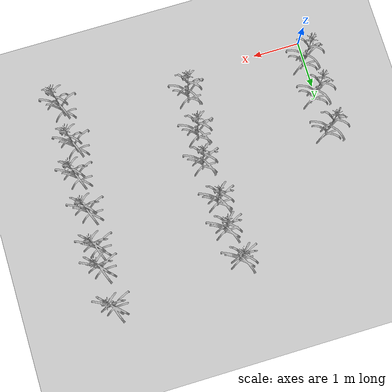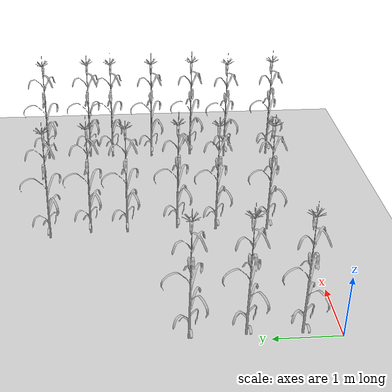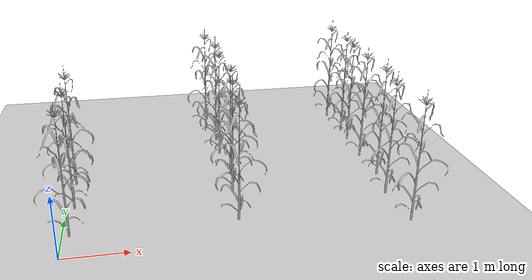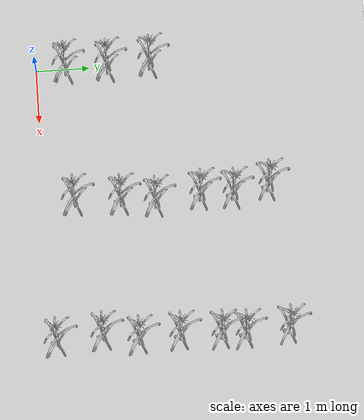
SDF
<sdf version="1.6">
 <world name="default">
  <model name="ground_plane">
   <static>1</static>
   <link name="link">
    <collision name="collision">
     <geometry><plane><normal>0 0 1</normal><size>100 100</size></plane></geometry>
     <surface>
      <contact><collide_bitmask>65535</collide_bitmask></contact>
      <friction><ode><mu>100</mu><mu2>50</mu2></ode></friction>
     </surface>
    </collision>
    <visual name="visual">
     <cast_shadows>0</cast_shadows>
     <geometry><plane><normal>0 0 1</normal><size>100 100</size></plane></geometry>
     <material>
      <script><uri>file://media/materials/scripts/gazebo.material</uri><name>Gazebo/Grey</name></script>
     </material>
    </visual>
   </link>
  </model>
  <model name="corn_stalk2_clone_4">
   <static>1</static>
   <link name="corn_stalk2_link">
    <collision name="collision">
     <geometry><mesh><scale>1 1 1</scale><uri>model://corn_type2/meshes/model.stl</uri></mesh></geometry>
    </collision>
    <visual name="corn_stalk2_visual">
     <geometry><mesh><uri>model://corn_type2/meshes/model.stl</uri><scale>1 1 1</scale></mesh></geometry>
     <material>
      <script>
       <uri>model://corn_type2/materials/scripts</uri>
       <uri>model://corn_type2/materials/textures</uri>
       <name>corn_type2/Diffuse</name>
      </script>
     </material>
    </visual>
   </link>
   <pose>0.104419 0.548248 0 0 -0 0</pose>
  </model>
  <model name="corn_stalk2_clone_5">
   <static>1</static>
   <link name="corn_stalk2_link">
    <collision name="collision">
     <geometry><mesh><scale>1 1 1</scale><uri>model://corn_type2/meshes/model.stl</uri></mesh></geometry>
    </collision>
    <visual name="corn_stalk2_visual">
     <geometry><mesh><uri>model://corn_type2/meshes/model.stl</uri><scale>1 1 1</scale></mesh></geometry>
     <material>
      <script>
       <uri>model://corn_type2/materials/scripts</uri>
       <uri>model://corn_type2/materials/textures</uri>
       <name>corn_type2/Diffuse</name>
      </script>
     </material>
    </visual>
   </link>
   <pose>0.125821 1.32814 0 0 -0 0</pose>
  </model>
  <model name="corn_stalk2_clone_6">
   <static>1</static>
   <link name="corn_stalk2_link">
    <collision name="collision">
     <geometry><mesh><scale>1 1 1</scale><uri>model://corn_type2/meshes/model.stl</uri></mesh></geometry>
    </collision>
    <visual name="corn_stalk2_visual">
     <geometry><mesh><uri>model://corn_type2/meshes/model.stl</uri><scale>1 1 1</scale></mesh></geometry>
     <material>
      <script>
       <uri>model://corn_type2/materials/scripts</uri>
       <uri>model://corn_type2/materials/textures</uri>
       <name>corn_type2/Diffuse</name>
      </script>
     </material>
    </visual>
   </link>
   <pose>0.098846 2.1209 0 0 -0 0</pose>
  </model>
  <model name="corn_stalk2_clone_15">
   <static>1</static>
   <link name="corn_stalk2_link">
    <collision name="collision">
     <geometry><mesh><scale>1 1 1</scale><uri>model://corn_type2/meshes/model.stl</uri></mesh></geometry>
    </collision>
    <visual name="corn_stalk2_visual">
     <geometry><mesh><uri>model://corn_type2/meshes/model.stl</uri><scale>1 1 1</scale></mesh></geometry>
     <material>
      <script>
       <uri>model://corn_type2/materials/scripts</uri>
       <uri>model://corn_type2/materials/textures</uri>
       <name>corn_type2/Diffuse</name>
      </script>
     </material>
    </visual>
   </link>
   <pose>2.64897 0.56757 0 0 -0 0</pose>
  </model>
  <model name="corn_stalk2_clone_16">
   <static>1</static>
   <link name="corn_stalk2_link">
    <collision name="collision">
     <geometry><mesh><scale>1 1 1</scale><uri>model://corn_type2/meshes/model.stl</uri></mesh></geometry>
    </collision>
    <visual name="corn_stalk2_visual">
     <geometry><mesh><uri>model://corn_type2/meshes/model.stl</uri><scale>1 1 1</scale></mesh></geometry>
     <material>
      <script>
       <uri>model://corn_type2/materials/scripts</uri>
       <uri>model://corn_type2/materials/textures</uri>
       <name>corn_type2/Diffuse</name>
      </script>
     </material>
    </visual>
   </link>
   <pose>2.69733 1.42162 0 0 -0 0</pose>
  </model>
  <model name="corn_stalk2_clone_17">
   <static>1</static>
   <link name="corn_stalk2_link">
    <collision name="collision">
     <geometry><mesh><scale>1 1 1</scale><uri>model://corn_type2/meshes/model.stl</uri></mesh></geometry>
    </collision>
    <visual name="corn_stalk2_visual">
     <geometry><mesh><uri>model://corn_type2/meshes/model.stl</uri><scale>1 1 1</scale></mesh></geometry>
     <material>
      <script>
       <uri>model://corn_type2/materials/scripts</uri>
       <uri>model://corn_type2/materials/textures</uri>
       <name>corn_type2/Diffuse</name>
      </script>
     </material>
    </visual>
   </link>
   <pose>2.77481 2.05723 0 0 -0 0</pose>
  </model>
  <model name="corn_stalk2_clone_18">
   <static>1</static>
   <link name="corn_stalk2_link">
    <collision name="collision">
     <geometry><mesh><scale>1 1 1</scale><uri>model://corn_type2/meshes/model.stl</uri></mesh></geometry>
    </collision>
    <visual name="corn_stalk2_visual">
     <geometry><mesh><uri>model://corn_type2/meshes/model.stl</uri><scale>1 1 1</scale></mesh></geometry>
     <material>
      <script>
       <uri>model://corn_type2/materials/scripts</uri>
       <uri>model://corn_type2/materials/textures</uri>
       <name>corn_type2/Diffuse</name>
      </script>
     </material>
    </visual>
   </link>
   <pose>2.6994 2.88951 0 0 -0 0</pose>
  </model>
  <model name="corn_stalk2_clone_19">
   <static>1</static>
   <link name="corn_stalk2_link">
    <collision name="collision">
     <geometry><mesh><scale>1 1 1</scale><uri>model://corn_type2/meshes/model.stl</uri></mesh></geometry>
    </collision>
    <visual name="corn_stalk2_visual">
     <geometry><mesh><uri>model://corn_type2/meshes/model.stl</uri><scale>1 1 1</scale></mesh></geometry>
     <material>
      <script>
       <uri>model://corn_type2/materials/scripts</uri>
       <uri>model://corn_type2/materials/textures</uri>
       <name>corn_type2/Diffuse</name>
      </script>
     </material>
    </visual>
   </link>
   <pose>2.72044 3.49084 0 0 -0 0</pose>
  </model>
  <model name="corn_stalk2_clone_27">
   <static>1</static>
   <link name="corn_stalk2_link">
    <collision name="collision">
     <geometry><mesh><scale>1 1 1</scale><uri>model://corn_type2/meshes/model.stl</uri></mesh></geometry>
    </collision>
    <visual name="corn_stalk2_visual">
     <geometry><mesh><uri>model://corn_type2/meshes/model.stl</uri><scale>1 1 1</scale></mesh></geometry>
     <material>
      <script>
       <uri>model://corn_type2/materials/scripts</uri>
       <uri>model://corn_type2/materials/textures</uri>
       <name>corn_type2/Diffuse</name>
      </script>
     </material>
    </visual>
   </link>
   <pose>5.26222 0.100285 0 0 -0 0</pose>
  </model>
  <model name="corn_stalk2_clone_28">
   <static>1</static>
   <link name="corn_stalk2_link">
    <collision name="collision">
     <geometry><mesh><scale>1 1 1</scale><uri>model://corn_type2/meshes/model.stl</uri></mesh></geometry>
    </collision>
    <visual name="corn_stalk2_visual">
     <geometry><mesh><uri>model://corn_type2/meshes/model.stl</uri><scale>1 1 1</scale></mesh></geometry>
     <material>
      <script>
       <uri>model://corn_type2/materials/scripts</uri>
       <uri>model://corn_type2/materials/textures</uri>
       <name>corn_type2/Diffuse</name>
      </script>
     </material>
    </visual>
   </link>
   <pose>5.20625 0.940516 0 0 -0 0</pose>
  </model>
  <model name="corn_stalk2_clone_29">
   <static>1</static>
   <link name="corn_stalk2_link">
    <collision name="collision">
     <geometry><mesh><scale>1 1 1</scale><uri>model://corn_type2/meshes/model.stl</uri></mesh></geometry>
    </collision>
    <visual name="corn_stalk2_visual">
     <geometry><mesh><uri>model://corn_type2/meshes/model.stl</uri><scale>1 1 1</scale></mesh></geometry>
     <material>
      <script>
       <uri>model://corn_type2/materials/scripts</uri>
       <uri>model://corn_type2/materials/textures</uri>
       <name>corn_type2/Diffuse</name>
      </script>
     </material>
    </visual>
   </link>
   <pose>5.32406 1.59368 0 0 -0 0</pose>
  </model>
  <model name="corn_stalk2_clone_30">
   <static>1</static>
   <link name="corn_stalk2_link">
    <collision name="collision">
     <geometry><mesh><scale>1 1 1</scale><uri>model://corn_type2/meshes/model.stl</uri></mesh></geometry>
    </collision>
    <visual name="corn_stalk2_visual">
     <geometry><mesh><uri>model://corn_type2/meshes/model.stl</uri><scale>1 1 1</scale></mesh></geometry>
     <material>
      <script>
       <uri>model://corn_type2/materials/scripts</uri>
       <uri>model://corn_type2/materials/textures</uri>
       <name>corn_type2/Diffuse</name>
      </script>
     </material>
    </visual>
   </link>
   <pose>5.29624 2.3471 0 0 -0 0</pose>
  </model>
  <model name="corn_stalk2_clone_31">
   <static>1</static>
   <link name="corn_stalk2_link">
    <collision name="collision">
     <geometry><mesh><scale>1 1 1</scale><uri>model://corn_type2/meshes/model.stl</uri></mesh></geometry>
    </collision>
    <visual name="corn_stalk2_visual">
     <geometry><mesh><uri>model://corn_type2/meshes/model.stl</uri><scale>1 1 1</scale></mesh></geometry>
     <material>
      <script>
       <uri>model://corn_type2/materials/scripts</uri>
       <uri>model://corn_type2/materials/textures</uri>
       <name>corn_type2/Diffuse</name>
      </script>
     </material>
    </visual>
   </link>
   <pose>5.32727 3.1013 0 0 -0 0</pose>
  </model>
  <model name="corn_stalk2_clone_32">
   <static>1</static>
   <link name="corn_stalk2_link">
    <collision name="collision">
     <geometry><mesh><scale>1 1 1</scale><uri>model://corn_type2/meshes/model.stl</uri></mesh></geometry>
    </collision>
    <visual name="corn_stalk2_visual">
     <geometry><mesh><uri>model://corn_type2/meshes/model.stl</uri><scale>1 1 1</scale></mesh></geometry>
     <material>
      <script>
       <uri>model://corn_type2/materials/scripts</uri>
       <uri>model://corn_type2/materials/textures</uri>
       <name>corn_type2/Diffuse</name>
      </script>
     </material>
    </visual>
   </link>
   <pose>5.34855 3.53403 0 0 -0 0</pose>
  </model>
  <model name="corn_stalk2_clone_59">
   <static>1</static>
   <link name="corn_stalk2_link">
    <collision name="collision">
     <geometry><mesh><scale>1 1 1</scale><uri>model://corn_type2/meshes/model.stl</uri></mesh></geometry>
    </collision>
    <visual name="corn_stalk2_visual">
     <geometry><mesh><uri>model://corn_type2/meshes/model.stl</uri><scale>1 1 1</scale></mesh></geometry>
     <material>
      <script>
       <uri>model://corn_type2/materials/scripts</uri>
       <uri>model://corn_type2/materials/textures</uri>
       <name>corn_type2/Diffuse</name>
      </script>
     </material>
    </visual>
   </link>
   <pose>2.60591 4.14992 0 0 -0 0</pose>
  </model>
  <model name="corn_stalk2_clone_60">
   <static>1</static>
   <link name="corn_stalk2_link">
    <collision name="collision">
     <geometry><mesh><scale>1 1 1</scale><uri>model://corn_type2/meshes/model.stl</uri></mesh></geometry>
    </collision>
    <visual name="corn_stalk2_visual">
     <geometry><mesh><uri>model://corn_type2/meshes/model.stl</uri><scale>1 1 1</scale></mesh></geometry>
     <material>
      <script>
       <uri>model://corn_type2/materials/scripts</uri>
       <uri>model://corn_type2/materials/textures</uri>
       <name>corn_type2/Diffuse</name>
      </script>
     </material>
    </visual>
   </link>
   <pose>5.31354 4.33468 0 0 -0 0</pose>
  </model>
 </world>
</sdf>
